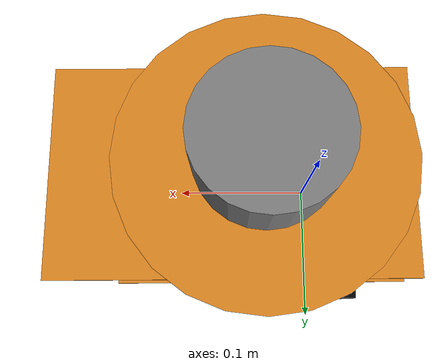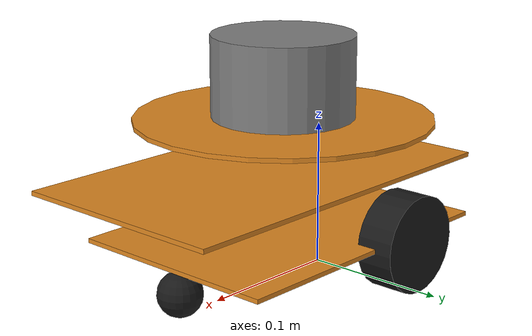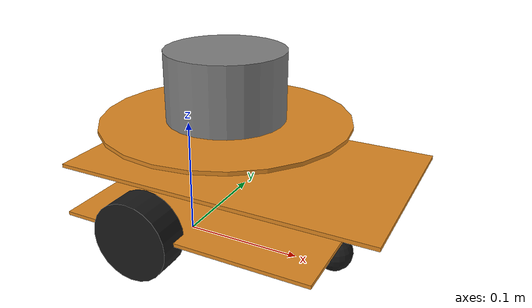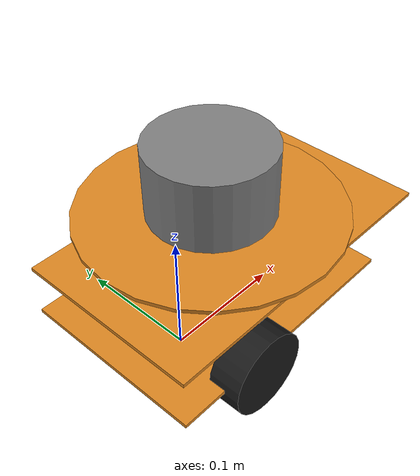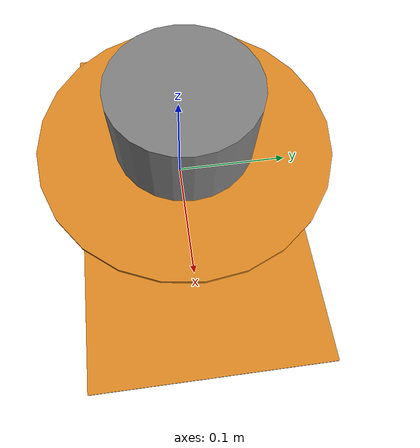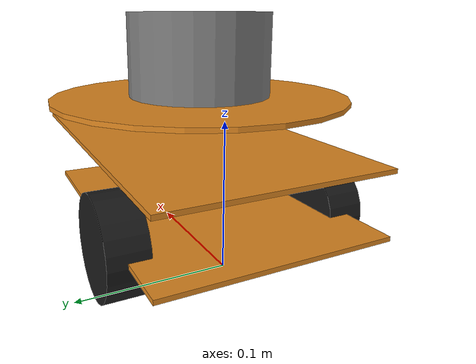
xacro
<?xml version="1.0"?>
<robot xmlns:xacro="http://www.ros.org/wiki/xacro" name="robot">

    <!-- sim_mode:
           true  → dùng gz_ros2_control/GazeboSimSystem (Gazebo simulation)
           false → dùng wall_e_hardware/WallEHardware    (real robot)
    -->
    <xacro:arg name="sim_mode" default="false"/>
        <xacro:arg name="enable_sensors" default="false"/>

    <xacro:include filename="robot_core_v2.xacro" />
    <xacro:include filename="ros2_control.xacro" />
    <xacro:include filename="gazebo_control.xacro" />

</robot>

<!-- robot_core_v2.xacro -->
<robot xmlns:xacro="http://www.ros.org/wiki/xacro">

    <xacro:include filename="inertial_macros.xacro" />

    <!-- ======================== MATERIALS ======================== -->

    <material name="white">
        <color rgba="1 1 1 1"/>
    </material>

    <material name="orange">
        <color rgba="0.87 0.53 0.13 1"/>
    </material>

    <material name="blue">
        <color rgba="0.2 0.2 1 1"/>
    </material>

    <material name="black">
        <color rgba="0.1 0.1 0.1 1"/>
    </material>

    <material name="red">
        <color rgba="1 0 0 1"/>
    </material>

    <material name="gray">
        <color rgba="0.5 0.5 0.5 1"/>
    </material>

    <!-- ======================== DIMENSIONS (xacro properties) ======================== -->

    <!-- Bánh xe -->
    <xacro:property name="wheel_radius"  value="0.033" />
    <xacro:property name="wheel_length"  value="0.026" />
    <xacro:property name="wheel_mass"    value="0.050" />
    <!-- Khoảng cách từ tâm robot đến tâm bánh xe theo trục Y (track width/2) -->
    <!-- chassis rộng 120mm → mép ngoài 60mm, trục motor nhô ra ~15mm → tổng 0.075m -->
    <xacro:property name="wheel_y_offset" value="0.075" />

    <!-- Tấm mica chữ nhật (Deck 1 = chassis, Deck 2 = deck2) -->
    <xacro:property name="mica_rect_x"       value="0.213" />
    <xacro:property name="mica_rect_y"       value="0.152" />
    <xacro:property name="deck2_x"           value="0.256" /> <!-- Chiều dài tấm giữa (có thể tăng/giảm) -->
    <xacro:property name="mica_thickness"    value="0.003" />
    <xacro:property name="mica_rect_mass"    value="0.200" />

    <!-- Tấm mica tròn (Lidar Deck) -->giữa
    <xacro:property name="mica_circle_r"     value="0.100" />
    <xacro:property name="mica_circle_mass"  value="0.100" />

    <!-- Trụ đồng (standoffs) -->
    <xacro:property name="standoff_deck1_deck2"   value="0.040" />
    <xacro:property name="standoff_deck2_lidar"   value="0.030" />

    <!-- Caster wheel (bánh con lăn phía trước) -->
    <!-- R_caster ≈ R_wheel / 2 để chassis nằm ngang: 0.033/2 ≈ 0.015m -->
    <xacro:property name="caster_radius" value="0.015" />
    <xacro:property name="caster_mass"   value="0.030" />

    <!-- Vị trí trục bánh chủ động: 70mm từ đuôi chassis
         → chassis_joint x = -0.070 (chassis link origin tại đuôi chassis) -->
    <xacro:property name="axle_from_rear" value="0.070" />

    <!-- RPLidar -->
    <xacro:property name="lidar_radius"  value="0.048" />
    <xacro:property name="lidar_height"  value="0.055" />
    <xacro:property name="lidar_mass"    value="0.170" />

    <!-- ======================== BASE FOOTPRINT ======================== -->
    <!--
        base_footprint: điểm ảo nằm trên mặt đất, hình chiếu của robot.
        Dùng làm gốc cho Nav2.
    -->
    <link name="base_footprint"/>

    <joint name="base_footprint_joint" type="fixed">
        <parent link="base_footprint"/>
        <child link="base_link"/>
        <!-- Nâng base_link lên bằng bán kính bánh xe so với mặt đất -->
        <origin xyz="0 0 ${wheel_radius}" rpy="0 0 0"/>
    </joint>

    <!-- ======================== BASE LINK ======================== -->
    <!--
        base_link: tâm trục bánh chủ động.
        Link rỗng (không có visual/collision) — dùng làm điểm gốc tham chiếu.
    -->
    <link name="base_link"/>

    <!-- ======================== CHASSIS (DECK 1) ======================== -->
    <joint name="chassis_joint" type="fixed">
        <parent link="base_link"/>
        <child link="chassis"/>
        <!--
            x = -axle_from_rear: dịch về phía sau để trục bánh nằm đúng vị trí 70mm từ đuôi
            z = 0: đáy chassis ngang bằng tâm trục bánh (motor shaft ở tâm bánh)
        -->
        <origin xyz="${-axle_from_rear} 0 0" rpy="0 0 0"/>
    </joint>

    <link name="chassis">
        <visual>
            <origin xyz="${mica_rect_x/2} 0 ${mica_thickness/2}" rpy="0 0 0"/>
            <geometry>
                <box size="${mica_rect_x} ${mica_rect_y} ${mica_thickness}"/>
            </geometry>
            <material name="orange"/>
        </visual>
        <collision>
            <origin xyz="${mica_rect_x/2} 0 ${mica_thickness/2}" rpy="0 0 0"/>
            <geometry>
                <box size="${mica_rect_x} ${mica_rect_y} ${mica_thickness}"/>
            </geometry>
        </collision>
        <xacro:inertial_box mass="${mica_rect_mass}"
                            x="${mica_rect_x}" y="${mica_rect_y}" z="${mica_thickness}">
            <origin xyz="${mica_rect_x/2} 0 ${mica_thickness/2}" rpy="0 0 0"/>
        </xacro:inertial_box>
    </link>

    <!-- ======================== LEFT WHEEL ======================== -->
    <!--
        Bánh chủ động bên trái.
        Joint dạng continuous (xoay liên tục), trục quay = Z (sau khi rpy xoay -90°).
    -->
    <joint name="left_wheel_joint" type="continuous">
        <parent link="base_link"/>
        <child link="left_wheel"/>
        <origin xyz="0 ${wheel_y_offset} 0" rpy="${-pi/2} 0 0"/>
        <axis xyz="0 0 1"/>
        <limit effort="1.0" velocity="10.0"/>
    </joint>

    <link name="left_wheel">
        <visual>
            <geometry>
                <cylinder length="${wheel_length}" radius="${wheel_radius}"/>
            </geometry>
            <material name="black"/>
        </visual>
        <collision>
            <geometry>
                <cylinder length="${wheel_length}" radius="${wheel_radius}"/>
            </geometry>
        </collision>
        <xacro:inertial_cylinder mass="${wheel_mass}"
                                 length="${wheel_length}"
                                 radius="${wheel_radius}">
            <origin xyz="0 0 0" rpy="0 0 0"/>
        </xacro:inertial_cylinder>
    </link>

    <!-- ======================== RIGHT WHEEL ======================== -->
    <!--
        Bánh chủ động bên phải.
        rpy = (+pi/2, 0, 0): xoay ngược chiều để axis z quay đúng hướng tiến.
    -->
    <joint name="right_wheel_joint" type="continuous">
        <parent link="base_link"/>
        <child link="right_wheel"/>
        <origin xyz="0 ${-wheel_y_offset} 0" rpy="${pi/2} 0 0"/>
        <axis xyz="0 0 -1"/>
        <limit effort="1.0" velocity="10.0"/>
    </joint>

    <link name="right_wheel">
        <visual>
            <geometry>
                <cylinder length="${wheel_length}" radius="${wheel_radius}"/>
            </geometry>
            <material name="black"/>
        </visual>
        <collision>
            <geometry>
                <cylinder length="${wheel_length}" radius="${wheel_radius}"/>
            </geometry>
        </collision>
        <xacro:inertial_cylinder mass="${wheel_mass}"
                                 length="${wheel_length}"
                                 radius="${wheel_radius}">
            <origin xyz="0 0 0" rpy="0 0 0"/>
        </xacro:inertial_cylinder>
    </link>

    <!-- ======================== CASTER WHEEL ======================== -->
    <joint name="caster_wheel_joint" type="fixed">
        <parent link="chassis"/>
        <child link="caster_wheel"/>
        <origin xyz="${mica_rect_x - 0.010} 0 ${-(wheel_radius - caster_radius)}"
                rpy="0 0 0"/>
    </joint>

    <link name="caster_wheel">
        <visual>
            <geometry>
                <sphere radius="${caster_radius}"/>
            </geometry>
            <material name="black"/>
        </visual>
        <collision>
            <geometry>
                <sphere radius="${caster_radius}"/>
            </geometry>
        </collision>
        <xacro:inertial_sphere mass="${caster_mass}" radius="${caster_radius}">
            <origin xyz="0 0 0" rpy="0 0 0"/>
        </xacro:inertial_sphere>
    </link>

    <!-- Caster không có ma sát → trượt tự do trong Gazebo -->
    <gazebo reference="caster_wheel">
        <mu1 value="0.0"/>
        <mu2 value="0.0"/>
    </gazebo>

    <!-- ======================== DECK 2 (MIDDLE LAYER) ======================== -->
    <joint name="deck2_joint" type="fixed">
        <parent link="chassis"/>
        <child link="deck2"/>
        <origin xyz="0 0 ${mica_thickness + standoff_deck1_deck2}" rpy="0 0 0"/>
    </joint>

    <link name="deck2">
        <visual>
            <origin xyz="${deck2_x/2} 0 ${mica_thickness/2}" rpy="0 0 0"/>
            <geometry>
                <box size="${deck2_x} ${mica_rect_y} ${mica_thickness}"/>
            </geometry>
            <material name="orange"/>
        </visual>
        <collision>
            <origin xyz="${deck2_x/2} 0 ${mica_thickness/2}" rpy="0 0 0"/>
            <geometry>
                <box size="${deck2_x} ${mica_rect_y} ${mica_thickness}"/>
            </geometry>
        </collision>
        <xacro:inertial_box mass="${mica_rect_mass}"
                            x="${deck2_x}" y="${mica_rect_y}" z="${mica_thickness}">
            <origin xyz="${deck2_x/2} 0 ${mica_thickness/2}" rpy="0 0 0"/>
        </xacro:inertial_box>
    </link>

    <!-- ======================== LIDAR DECK (TOP CIRCULAR LAYER) ======================== -->
    <joint name="lidar_deck_joint" type="fixed">
        <parent link="deck2"/>
        <child link="lidar_deck"/>
        <origin xyz="${mica_rect_x/2} 0 ${mica_thickness + standoff_deck2_lidar}"
                rpy="0 0 0"/>
    </joint>

    <link name="lidar_deck">
        <visual>
            <!-- Cylinder origin tại tâm → visual center ở mica_thickness/2 -->
            <origin xyz="0 0 ${mica_thickness/2}" rpy="0 0 0"/>
            <geometry>
                <cylinder radius="${mica_circle_r}" length="${mica_thickness}"/>
            </geometry>
            <material name="orange"/>
        </visual>
        <collision>
            <origin xyz="0 0 ${mica_thickness/2}" rpy="0 0 0"/>
            <geometry>
                <cylinder radius="${mica_circle_r}" length="${mica_thickness}"/>
            </geometry>
        </collision>
        <xacro:inertial_cylinder mass="${mica_circle_mass}"
                                 length="${mica_thickness}"
                                 radius="${mica_circle_r}">
            <origin xyz="0 0 ${mica_thickness/2}" rpy="0 0 0"/>
        </xacro:inertial_cylinder>
    </link>

    <!-- ======================== LASER FRAME (RPLidar) ======================== -->
    <joint name="laser_joint" type="fixed">
        <parent link="lidar_deck"/>
        <child link="laser_frame"/>
        <origin xyz="0 0 ${mica_thickness + lidar_height/2}" rpy="0 0 3.14159"/>
    </joint>

    <link name="laser_frame">
        <visual>
            <geometry>
                <cylinder radius="${lidar_radius}" length="${lidar_height}"/>
            </geometry>
            <material name="gray"/>
        </visual>
        <collision>
            <geometry>
                <cylinder radius="${lidar_radius}" length="${lidar_height}"/>
            </geometry>
        </collision>
        <xacro:inertial_cylinder mass="${lidar_mass}"
                                 length="${lidar_height}"
                                 radius="${lidar_radius}">
            <origin xyz="0 0 0" rpy="0 0 0"/>
        </xacro:inertial_cylinder>
    </link>

    <!-- Gazebo sensor plugin cho LiDAR (gpu_lidar 360°) -->
    <gazebo reference="laser_frame">
        <material>Gazebo/DarkGrey</material>
        <sensor name="laser" type="gpu_lidar">
            <always_on>1</always_on>
            <pose>0 0 0 0 0 0</pose>
            <visualize>true</visualize>
            <update_rate>10</update_rate>
            <lidar>
                <scan>
                    <horizontal>
                        <samples>360</samples>
                        <min_angle>-3.14159</min_angle>
                        <max_angle>3.14159</max_angle>
                    </horizontal>
                </scan>
                <range>
                    <min>0.15</min>
                    <max>12.0</max>
                </range>
            </lidar>
            <topic>scan</topic>
            <gz_frame_id>laser_frame</gz_frame_id>
        </sensor>
    </gazebo>

</robot>
